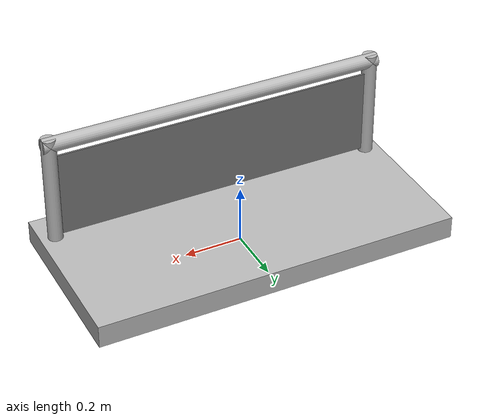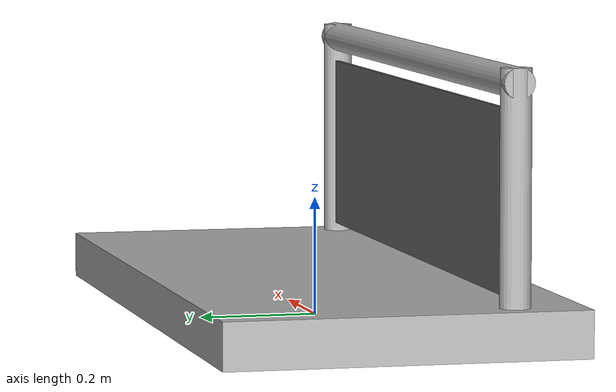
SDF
<?xml version="1.0" ?>
<sdf version="1.5">
  <model name="frc2016_lowbar">
    <link name="base">
      <inertial>
        <mass>50</mass>
        <inertia>
          <ixx>0.03554304</ixx>
          <ixy>0</ixy>
          <ixz>0</ixz>
          <iyy>0.134411694</iyy>
          <iyz>0</iyz>
          <izz>0.165376013</izz>
        </inertia>
      </inertial>

      <visual name="platform">
        <pose>0 0 0.039065 0 0 0</pose>
        <geometry>
          <box>
            <size>1.26 0.5996 0.07813</size>
          </box>
        </geometry>
      </visual>
      <collision name="platform">
        <pose>0 0 0.039065 0 0 0</pose>
        <geometry>
          <box>
            <size>1.27 0.6096 0.07813</size>
          </box>
        </geometry>
      </collision>

      <visual name="right_column">
        <pose>-0.57845 -0.18464 0.26863 0 0 0</pose>
        <geometry>
          <cylinder>
            <radius>0.0254</radius>
            <length>0.381</length>
          </cylinder>
        </geometry>
      </visual>
      <collision name="right_column">
        <pose>-0.57845 -0.18464 0.26863 0 0 0</pose>
        <geometry>
          <cylinder>
            <radius>0.0254</radius>
            <length>0.381</length>
          </cylinder>
        </geometry>
      </collision>

      <visual name="left_column">
        <pose>0.57845 -0.18464 0.26863 0 0 0</pose>
        <geometry>
          <cylinder>
            <radius>0.0254</radius>
            <length>0.381</length>
          </cylinder>
        </geometry>
      </visual>
      <collision name="left_column">
        <pose>0.57845 -0.18464 0.26863 0 0 0</pose>
        <geometry>
          <cylinder>
            <radius>0.0254</radius>
            <length>0.381</length>
          </cylinder>
        </geometry>
      </collision>

      <visual name="horizontal">
        <pose>0 -0.18464 0.43556 0 1.5707 0</pose>
        <geometry>
          <cylinder>
            <radius>0.0254</radius>
            <length>1.2018</length>
          </cylinder>
        </geometry>
      </visual>
      <collision name="horizontal">
        <pose>0 -0.18464 0.43556 0 1.5707 0</pose>
        <geometry>
          <cylinder>
            <radius>0.0254</radius>
            <length>1.2018</length>
          </cylinder>
        </geometry>
      </collision>
    </link>

    <link name="wall">
      <pose>0 -0.1778 0.24323 0 0 0</pose>
      <inertial>
        <mass>1</mass>
        <inertia>
          <ixx>0.00774528</ixx>
          <ixy>0</ixy>
          <ixz>0</ixz>
          <iyy>0.11661267</iyy>
          <iyz>0</iyz>
          <izz>0.10887411</izz>
        </inertia>
      </inertial>

      <visual name="visual">
        <geometry>
          <box>
            <size>1.1176 0.00635 0.3</size>
          </box>
        </geometry>
        <material>
          <ambient>0.46 0.46 0.46 1.0</ambient>
          <diffuse>0.46 0.46 0.46 1.0</diffuse>
        </material>
      </visual>
      <collision name="collision">
        <geometry>
          <box>
            <size>1.143 0.00635 0.3</size>
          </box>
        </geometry>
      </collision>
    </link>

    <joint type="revolute" name="bar_joint">
      <pose>0 0 0.36378 0 0 0</pose>
      <parent>base</parent>
      <child>wall</child>
      <axis>
        <xyz>1 0 0</xyz>
        <limit>
          <lower>-1.5707</lower>
          <upper>1.5707</upper>
        </limit>
      </axis>
    </joint>

  </model>
</sdf>
